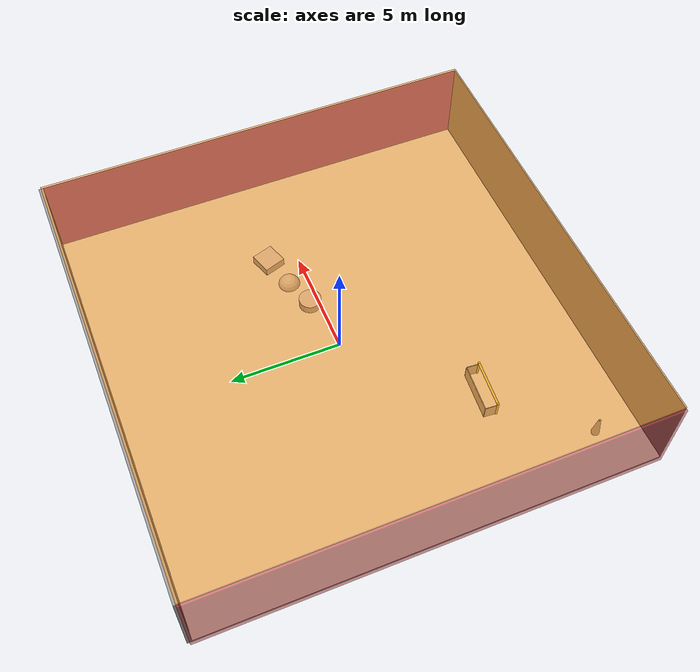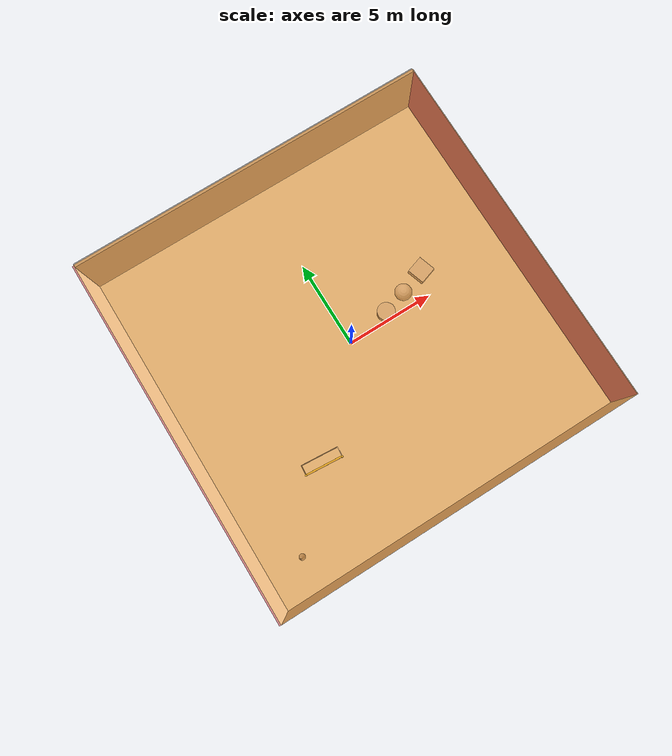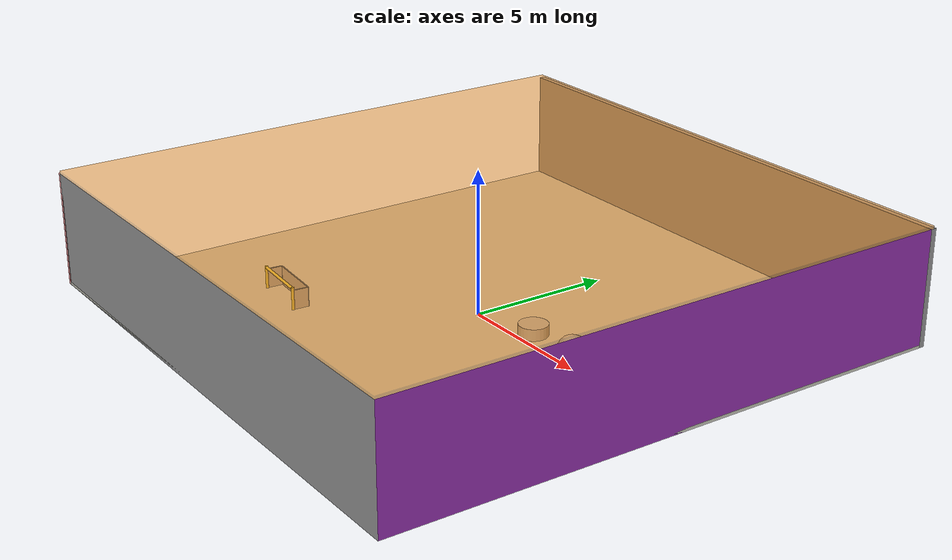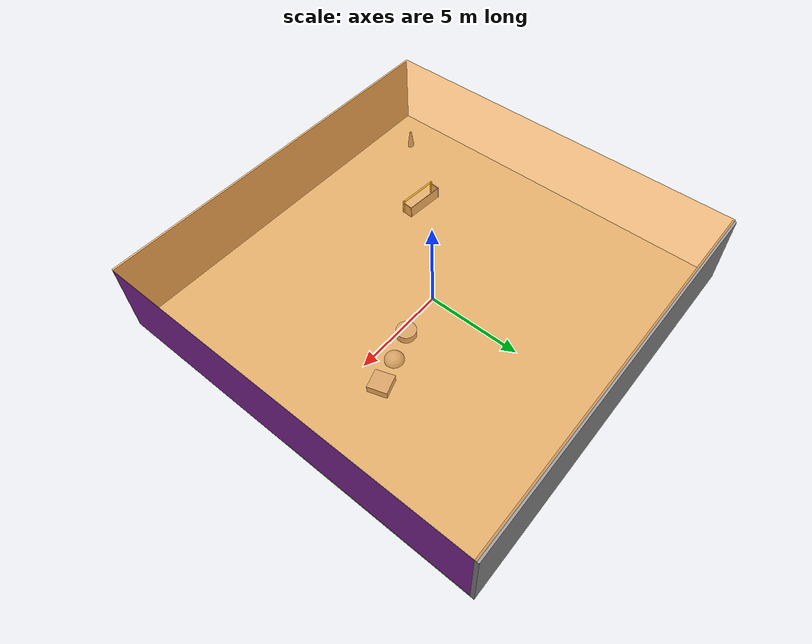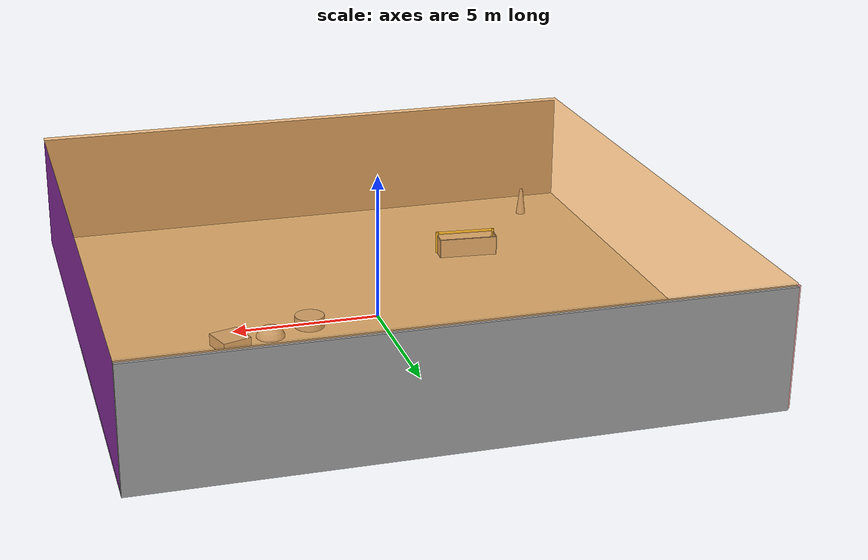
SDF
<sdf version="1.4">
 <world name="default">
  <physics type="ode">
   <max_step_size>0.001</max_step_size>
   <real_time_factor>1</real_time_factor>
   <real_time_update_rate>1000</real_time_update_rate>
   <gravity>0 0 -9.8</gravity>
  </physics>
  <scene><ambient>0.4 0.4 0.4 1</ambient><background>0.7 0.7 0.7 1</background><shadows>1</shadows></scene>
  <model name="Surrounding">
   <static>1</static>
   <link name="Ceiling">
    <collision name="Ceiling_Collision"><geometry><box><size>20 20 0.1</size></box></geometry></collision>
    <visual name="Ceiling_Visual">
     <geometry><box><size>20 20 0.1</size></box></geometry>
     <material>
      <script>
       <uri>file://media/materials/scripts/gazebo.material</uri>
       <name>Gazebo/OrangeTransparent</name>
      </script>
     </material>
    </visual>
    <pose>0 0 4.05 0 0 0</pose>
   </link>
   <link name="Wall_South">
    <collision name="Wall_South_Collision">
     <geometry><box><size>20 0 4</size></box></geometry>
     <pose>0 0 2 0 -0 0</pose>
    </collision>
    <visual name="Wall_South_Visual">
     <pose>0 0 2 0 -0 0</pose>
     <geometry><box><size>20 0 4</size></box></geometry>
     <material>
      <script><uri>file://media/materials/scripts/gazebo.material</uri><name>Gazebo/GreyGradientSky</name></script>
     </material>
    </visual>
    <velocity_decay><linear>0</linear><angular>0</angular></velocity_decay>
    <pose>0 -10 0 0 -0 0</pose>
   </link>
   <link name="Wall_East">
    <collision name="Wall_21_Collision">
     <geometry><box><size>20 0 4</size></box></geometry>
     <pose>0 0 2 0 -0 0</pose>
    </collision>
    <visual name="Wall_21_Visual">
     <pose>0 0 2 0 -0 0</pose>
     <geometry><box><size>20 0 4</size></box></geometry>
     <material>
      <script><uri>file://media/materials/scripts/gazebo.material</uri><name>Gazebo/PurpleGlow</name></script>
     </material>
    </visual>
    <velocity_decay><linear>0</linear><angular>0</angular></velocity_decay>
    <pose>10 0 0 0 -0 1.5708</pose>
   </link>
   <link name="Wall_North">
    <collision name="Wall_22_Collision">
     <geometry><box><size>20 0.2 4</size></box></geometry>
     <pose>0 0 2 0 -0 0</pose>
    </collision>
    <visual name="Wall_22_Visual">
     <pose>0 0 2 0 -0 0</pose>
     <geometry><box><size>20 0.2 4</size></box></geometry>
     <material>
      <script><uri>file://media/materials/scripts/gazebo.material</uri><name>Gazebo/Grey</name></script>
     </material>
    </visual>
    <velocity_decay><linear>0</linear><angular>0</angular></velocity_decay>
    <pose>0 10 0 0 -0 0</pose>
   </link>
   <link name="Wall_West">
    <collision name="Wall_23_Collision">
     <geometry><box><size>20 0.2 4</size></box></geometry>
     <pose>0 0 2 0 -0 0</pose>
    </collision>
    <visual name="Wall_23_Visual">
     <pose>0 0 2 0 -0 0</pose>
     <geometry><box><size>20 0.2 4</size></box></geometry>
     <material>
      <script><uri>file://media/materials/scripts/gazebo.material</uri><name>Gazebo/RedTransparent</name></script>
     </material>
    </visual>
    <velocity_decay><linear>0</linear><angular>0</angular></velocity_decay>
    <pose>-10 0 0 0 0 -1.5708</pose>
   </link>
   <link name="Ground_link">
    <collision name="collision">
     <pose>0 0 .05 0 -0 0</pose>
     <geometry><box><size>20 20 0.1</size></box></geometry>
    </collision>
    <visual name="visual">
     <pose>0 0 .05 0 -0 0</pose>
     <geometry><box><size>20 20 0.1</size></box></geometry>
     <material>
      <script><uri>file://media/materials/scripts/gazebo.material</uri><name>Gazebo/PaintedWall</name></script>
     </material>
    </visual>
   </link>
   <static>1</static>
  </model>
  <spherical_coordinates>
   <surface_model>EARTH_WGS84</surface_model>
   <latitude_deg>0</latitude_deg>
   <longitude_deg>0</longitude_deg>
   <elevation>0</elevation>
   <heading_deg>0</heading_deg>
  </spherical_coordinates>
  <light name="lightball_0" type="diffuse">
   <diffuse>0.8 0.8 0.8 1</diffuse>
   <specular>0.2 0.2 0.2 1</specular>
   <attenuation>
    <range>100</range>
    <constant>0.7</constant>
    <linear>0.01</linear>
    <quadratic>0.001</quadratic>
   </attenuation>
   <direction>-0.5 0.1 -0.9</direction>
   <pose>-4.2042495784 1.17515397025 3.3633663669 0 0 0</pose>
  </light>
  <light name="lightball_1" type="diffuse">
   <diffuse>0.8 0.8 0.8 1</diffuse>
   <specular>0.2 0.2 0.2 1</specular>
   <attenuation>
    <range>100</range>
    <constant>0.7</constant>
    <linear>0.01</linear>
    <quadratic>0.001</quadratic>
   </attenuation>
   <direction>-0.5 0.1 -0.9</direction>
   <pose>2.09810397412 5.33548998476 1.1793643543 0 0 0</pose>
  </light>
  <light name="lightball_2" type="diffuse">
   <diffuse>0.8 0.8 0.8 1</diffuse>
   <specular>0.2 0.2 0.2 1</specular>
   <attenuation>
    <range>100</range>
    <constant>0.7</constant>
    <linear>0.01</linear>
    <quadratic>0.001</quadratic>
   </attenuation>
   <direction>-0.5 0.1 -0.9</direction>
   <pose>6.88812419769 -4.23521386197 2.68376182641 0 0 0</pose>
  </light>
  <light name="lightball_3" type="diffuse">
   <diffuse>0.8 0.8 0.8 1</diffuse>
   <specular>0.2 0.2 0.2 1</specular>
   <attenuation>
    <range>100</range>
    <constant>0.7</constant>
    <linear>0.01</linear>
    <quadratic>0.001</quadratic>
   </attenuation>
   <direction>-0.5 0.1 -0.9</direction>
   <pose>5.05934315226 2.5275275368 2.28017986418 0 0 0</pose>
  </light>
  <light name="lightball_4" type="diffuse">
   <diffuse>0.8 0.8 0.8 1</diffuse>
   <specular>0.2 0.2 0.2 1</specular>
   <attenuation>
    <range>100</range>
    <constant>0.7</constant>
    <linear>0.01</linear>
    <quadratic>0.001</quadratic>
   </attenuation>
   <direction>-0.5 0.1 -0.9</direction>
   <pose>9.68108855419 -5.54924133331 3.47237923657 0 0 0</pose>
  </light>
  <light name="lightball_5" type="diffuse">
   <diffuse>0.8 0.8 0.8 1</diffuse>
   <specular>0.2 0.2 0.2 1</specular>
   <attenuation>
    <range>100</range>
    <constant>0.7</constant>
    <linear>0.01</linear>
    <quadratic>0.001</quadratic>
   </attenuation>
   <direction>-0.5 0.1 -0.9</direction>
   <pose>0.30479426454 4.88723366674 1.17813136234 0 0 0</pose>
  </light>
  <include>
   <uri>model://construction_cone</uri>
   <pose>-8.01342531939 -8.11492600543 0 0 0 1.35632968394</pose>
  </include>
  <include>
   <uri>model://robocup_3Dsim_goal</uri>
   <pose>-4.64587898089 -4.81037198821 0 0 0 1.49247110771</pose>
  </include>
  <include>
   <uri>model://textured_shapes</uri>
   <pose>3.89759134543 0.887324765388 0 0 0 1.88764001734</pose>
  </include>
 </world>
</sdf>

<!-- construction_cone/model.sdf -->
<sdf version="1.5">
  <model name="Construction Cone">
    <link name="link">
      <collision name="collision">
        <geometry>
          <mesh>
            <scale>10 10 10</scale>
            <uri>file://isr-testbed/construction_cone/meshes/construction_cone.dae</uri>
          </mesh>
        </geometry>
      </collision>
      <visual name="visual">
        <geometry>
          <mesh>
            <scale>10 10 10</scale>
            <uri>file://isr-testbed/construction_cone/meshes/construction_cone.dae</uri>
          </mesh>
        </geometry>
      </visual>
    </link>
  </model>
</sdf>

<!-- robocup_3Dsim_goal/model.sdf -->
<sdf version="1.5">
  <model name="robocup_3d_goal">
    <static>true</static>
    <link name="left_post">
      <pose>0 1.05 0.45 0 0 0</pose>
      <collision name="collision">
        <geometry>
          <cylinder>
            <radius>0.05</radius>
            <length>0.9</length>
          </cylinder>
        </geometry>
      </collision>
      <visual name="visual">
        <geometry>
          <cylinder>
            <radius>0.05</radius>
            <length>0.9</length>
          </cylinder>
        </geometry>
        <material>
          <script>
            <uri>file://media/materials/scripts/gazebo.material</uri>
            <name>Gazebo/ZincYellow</name>
          </script>
        </material>
      </visual>
    </link>
    <link name="left_support_horiz_lower">
      <pose>0.30 1.05 0.01 0 0 0</pose>
      <collision name="collision">
        <geometry>
          <box>
            <size>0.50 0.02 0.02</size>
          </box>
        </geometry>
      </collision>
      <visual name="visual">
        <geometry>
          <box>
            <size>0.50 0.02 0.02</size>
          </box>
        </geometry>
        <material>
          <script>
            <uri>file://media/materials/scripts/gazebo.material</uri>
            <name>Gazebo/White</name>
          </script>
        </material>
      </visual>
    </link>
    <link name="left_support_horiz_upper">
      <pose>0.30 1.05 0.79 0 0 0</pose>
      <collision name="collision">
        <geometry>
          <box>
            <size>0.50 0.02 0.02</size>
          </box>
        </geometry>
      </collision>
      <visual name="visual">
        <geometry>
          <box>
            <size>0.50 0.02 0.02</size>
          </box>
        </geometry>
        <material>
          <script>
            <uri>file://media/materials/scripts/gazebo.material</uri>
            <name>Gazebo/White</name>
          </script>
        </material>
      </visual>
    </link>
    <link name="left_support_vertical">
      <pose>0.56 1.05 0.4 0 1.5708 0</pose>
      <collision name="collision">
        <geometry>
          <box>
            <size>0.80 0.02 0.02</size>
          </box>
        </geometry>
      </collision>
      <visual name="visual">
        <geometry>
          <box>
            <size>0.80 0.02 0.02</size>
          </box>
        </geometry>
        <material>
          <script>
            <uri>file://media/materials/scripts/gazebo.material</uri>
            <name>Gazebo/White</name>
          </script>
        </material>
      </visual>
    </link>
    <link name="right_support_horiz_lower">
      <pose>0.30 -1.05 0.01 0 0 0</pose>
      <collision name="collision">
        <geometry>
          <box>
            <size>0.50 0.02 0.02</size>
          </box>
        </geometry>
      </collision>
      <visual name="visual">
        <geometry>
          <box>
            <size>0.50 0.02 0.02</size>
          </box>
        </geometry>
        <material>
          <script>
            <uri>file://media/materials/scripts/gazebo.material</uri>
            <name>Gazebo/White</name>
          </script>
        </material>
      </visual>
    </link>
    <link name="right_support_horiz_upper">
      <pose>0.30 -1.05 0.79 0 0 0</pose>
      <collision name="collision">
        <geometry>
          <box>
            <size>0.50 0.02 0.02</size>
          </box>
        </geometry>
      </collision>
      <visual name="visual">
        <geometry>
          <box>
            <size>0.50 0.02 0.02</size>
          </box>
        </geometry>
        <material>
          <script>
            <uri>file://media/materials/scripts/gazebo.material</uri>
            <name>Gazebo/White</name>
          </script>
        </material>
      </visual>
    </link>
    <link name="right_support_vertical">
      <pose>0.56 -1.05 0.4 0 1.5708 0</pose>
      <collision name="collision">
        <geometry>
          <box>
            <size>0.80 0.02 0.02</size>
          </box>
        </geometry>
      </collision>
      <visual name="visual">
        <geometry>
          <box>
            <size>0.80 0.02 0.02</size>
          </box>
        </geometry>
        <material>
          <script>
            <uri>file://media/materials/scripts/gazebo.material</uri>
            <name>Gazebo/White</name>
          </script>
        </material>
      </visual>
    </link>
    <link name="center_support_horiz_lower">
      <pose>0.56 0 0.01 0 1.5708 0</pose>
      <collision name="collision">
        <geometry>
          <box>
            <size>0.02 2.08 0.02</size>
          </box>
        </geometry>
      </collision>
      <visual name="visual">
        <geometry>
          <box>
            <size>0.02 2.08 0.02</size>
          </box>
        </geometry>
        <material>
          <script>
            <uri>file://media/materials/scripts/gazebo.material</uri>
            <name>Gazebo/White</name>
          </script>
        </material>
      </visual>
    </link>
    <link name="center_support_horiz_upper">
      <pose>0.56 0 0.79 0 1.5708 0</pose>
      <collision name="collision">
        <geometry>
          <box>
            <size>0.02 2.08 0.02</size>
          </box>
        </geometry>
      </collision>
      <visual name="visual">
        <geometry>
          <box>
            <size>0.02 2.08 0.02</size>
          </box>
        </geometry>
        <material>
          <script>
            <uri>file://media/materials/scripts/gazebo.material</uri>
            <name>Gazebo/White</name>
          </script>
        </material>
      </visual>
    </link>
    <link name="right_post">
      <pose>0 -1.05 0.45 0 0 0</pose>
      <collision name="collision">
        <geometry>
          <cylinder>
            <radius>0.05</radius>
            <length>0.9</length>
          </cylinder>
        </geometry>
      </collision>
      <visual name="visual">
        <geometry>
          <cylinder>
            <radius>0.05</radius>
            <length>0.9</length>
          </cylinder>
        </geometry>
        <material>
          <script>
            <uri>file://media/materials/scripts/gazebo.material</uri>
            <name>Gazebo/ZincYellow</name>
          </script>
        </material>
      </visual>
    </link>
    <link name="crossbar">
      <pose>0 0 0.85 1.57 1.57 0</pose>
      <collision name="collision">
        <geometry>
          <cylinder>
            <radius>0.05</radius>
            <length>2.0</length>
          </cylinder>
        </geometry>
      </collision>
      <visual name="visual">
        <geometry>
          <cylinder>
            <radius>0.05</radius>
            <length>2.0</length>
          </cylinder>
        </geometry>
        <material>
          <script>
            <uri>file://media/materials/scripts/gazebo.material</uri>
            <name>Gazebo/ZincYellow</name>
          </script>
        </material>
      </visual>
    </link>
    <link name="center_net">
      <pose>0.56 0 0.40 0 0 0</pose>
      <collision name="collision">
        <geometry>
          <box>
            <size>0.01 2.1 0.80</size>
          </box>
        </geometry>
      </collision>
      <visual name="visual">
        <geometry>
          <box>
            <size>0.01 2.1 0.80</size>
          </box>
        </geometry>
        <material>
          <script>
            <uri>model://../model_source/models/robocup09_spl_field/materials/scripts/</uri>
            <uri>model://../model_source/models/robocup09_spl_field/materials/textures/</uri>
            <name>RoboCup/Net</name>
          </script>
        </material>
      </visual>
    </link>
    <link name="left_net">
      <pose>0.30 1.05 0.40 0 0 0</pose>
      <collision name="collision">
        <geometry>
          <box>
            <size>0.50 0.01 0.76</size>
          </box>
        </geometry>
      </collision>
      <visual name="visual">
        <geometry>
          <box>
            <size>0.50 0.01 0.76</size>
          </box>
        </geometry>
        <material>
          <script>
            <uri>model://../model_source/models/robocup09_spl_field/materials/scripts/</uri>
            <uri>model://../model_source/models/robocup09_spl_field/materials/textures/</uri>
            <name>RoboCup/Net</name>
          </script>
        </material>
      </visual>
    </link>
    <link name="right_net">
      <pose>0.30 -1.05 0.40 0 0 0</pose>
      <collision name="collision">
        <geometry>
          <box>
            <size>0.50 0.01 0.76</size>
          </box>
        </geometry>
      </collision>
      <visual name="visual">
        <geometry>
          <box>
            <size>0.50 0.01 0.76</size>
          </box>
        </geometry>
        <material>
          <script>
            <uri>model://../model_source/models/robocup09_spl_field/materials/scripts/</uri>
            <uri>model://../model_source/models/robocup09_spl_field/materials/textures/</uri>
            <name>RoboCup/Net</name>
          </script>
        </material>
      </visual>
    </link>
  </model>
</sdf>

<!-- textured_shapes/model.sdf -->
<sdf version="1.6">
  <model name="textured_shapes">
    <pose>0 0 0.5 0 0 0</pose>
    <link name="box">
      <pose>0 -1.5 0 0 0 0</pose>
      <collision name="collision">
        <geometry>
          <box>
            <size>1 1 1</size>
          </box>
        </geometry>
      </collision>
      <visual name="visual">
        <geometry>
          <box>
            <size>1 1 1</size>
          </box>
        </geometry>
        <material>
          <script>
            <uri>model://../model_source/models/textured_shapes/materials/scripts</uri>
            <uri>model://../model_source/models/textured_shapes/materials/textures</uri>
            <name>TexturedShape/Squares</name>
          </script>
        </material>
      </visual>
    </link>
    <link name="sphere">
      <collision name="collision">
        <geometry>
          <sphere>
            <radius>0.5</radius>
          </sphere>
        </geometry>
      </collision>
      <visual name="visual">
        <geometry>
          <sphere>
            <radius>0.5</radius>
          </sphere>
        </geometry>
        <material>
          <script>
            <uri>model://../model_source/models/textured_shapes/materials/scripts</uri>
            <uri>model://../model_source/models/textured_shapes/materials/textures</uri>
            <name>TexturedShape/Squares</name>
          </script>
        </material>
      </visual>
    </link>
    <link name="cylinder">
      <pose>0 1.5 0 0 0 0</pose>
      <collision name="collision">
        <geometry>
          <cylinder>
            <radius>0.5</radius>
            <length>1</length>
          </cylinder>
        </geometry>
      </collision>
      <visual name="visual">
        <geometry>
          <cylinder>
            <radius>0.5</radius>
            <length>1</length>
          </cylinder>
        </geometry>
        <material>
          <script>
            <uri>model://../model_source/models/textured_shapes/materials/scripts</uri>
            <uri>model://../model_source/models/textured_shapes/materials/textures</uri>
            <name>TexturedShape/Squares</name>
          </script>
        </material>
      </visual>
    </link>
  </model>
</sdf>
